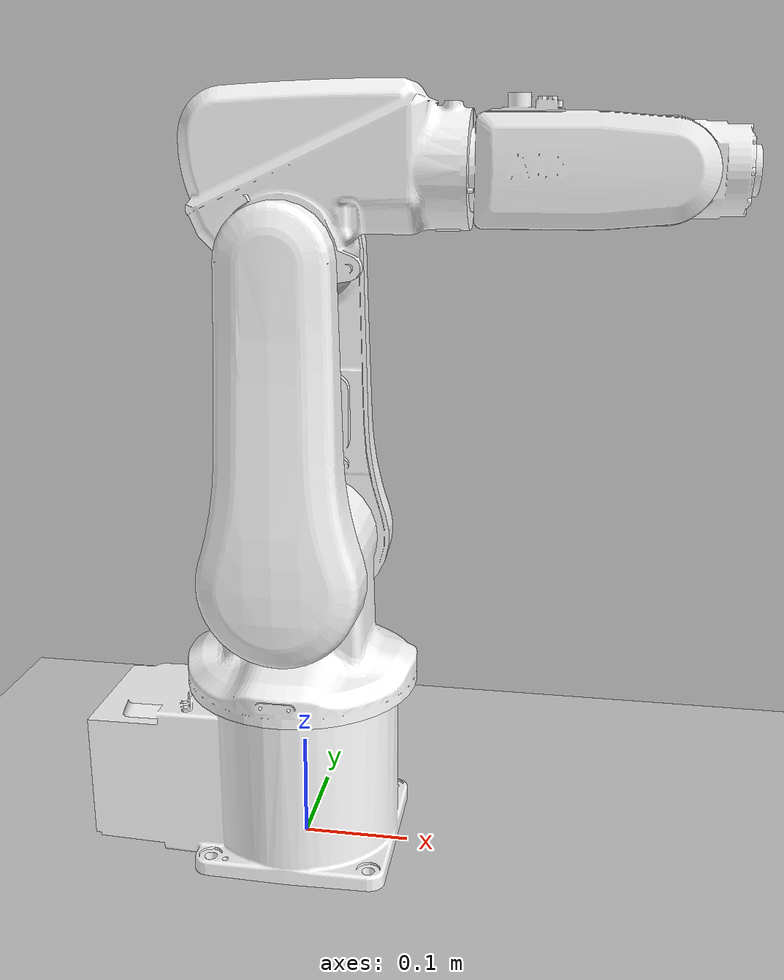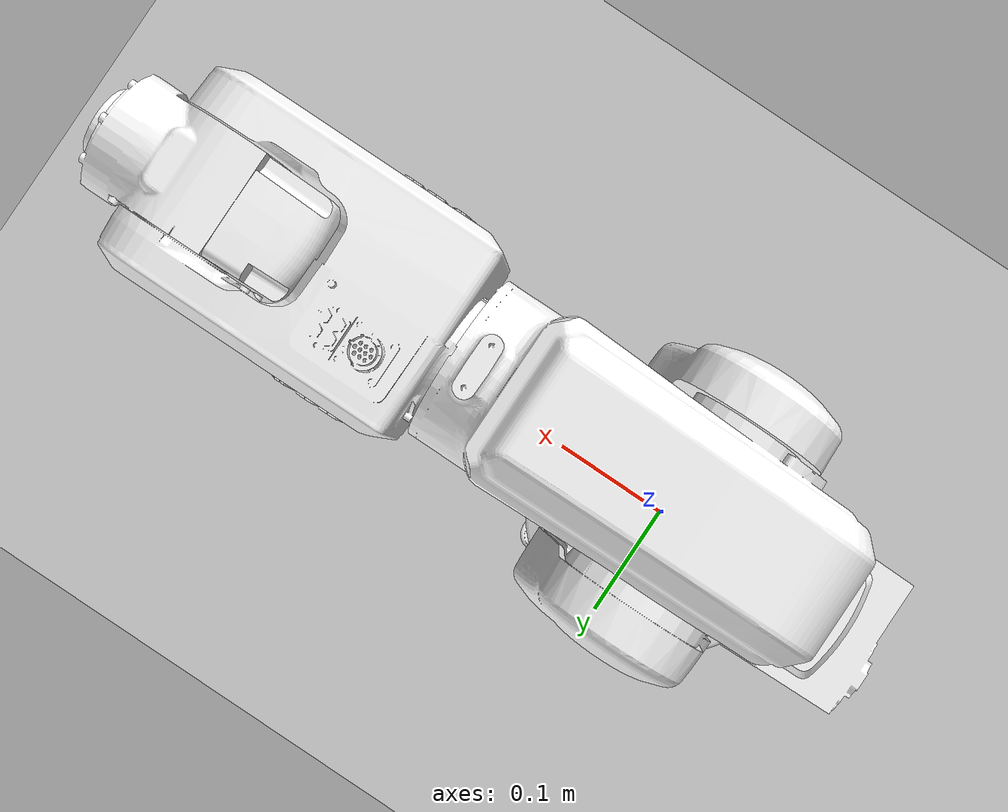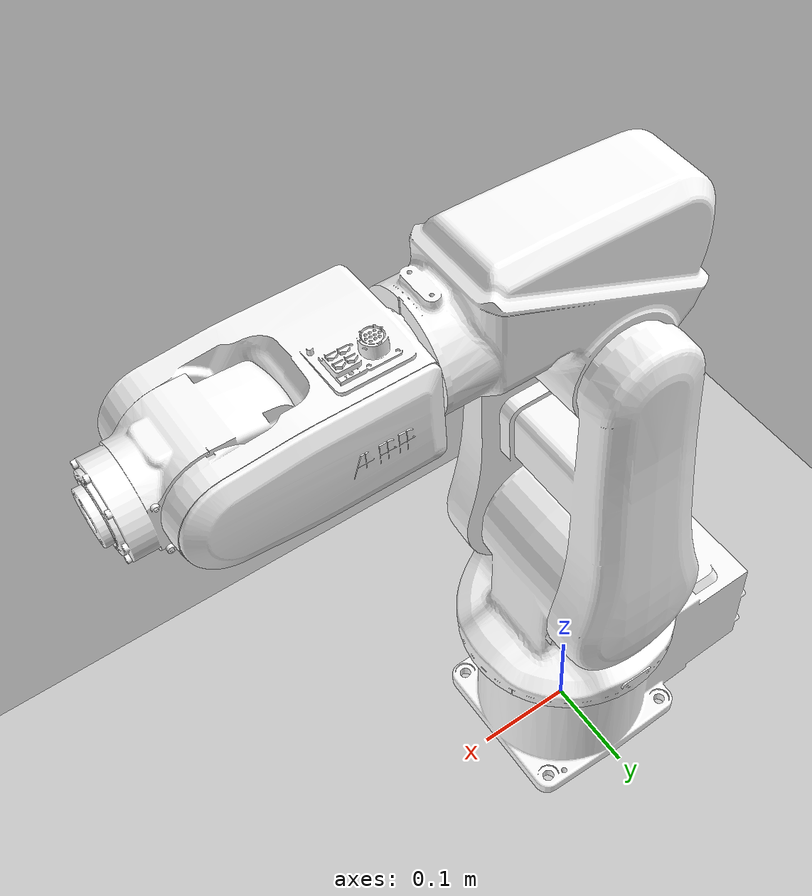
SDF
<?xml version="1.0" ?>
<sdf version="1.6">
  <world name="abb_irb120">
     <physics name="default_physics" default="0" type="ode">
      <max_step_size>0.001</max_step_size>
      <real_time_update_rate>1000</real_time_update_rate>
      <ode>
        <solver>
          <type>quick</type>
          <iters>100</iters>
          <sor>1.0</sor>
          <use_dynamic_moi_rescaling>false</use_dynamic_moi_rescaling>
        </solver>
      </ode>

    </physics>

    <include>
      <uri>model://ground_plane</uri>
    </include>

    <include>
      <uri>model://sun</uri>
    </include>

    <include>
      <uri>model://ABB_IRB120</uri>
  	<pose frame=''>0 0 0 0 0 0</pose>
       <plugin name="plugin" filename="libabb_irb120.so"/>
    </include>

  </world>
</sdf>

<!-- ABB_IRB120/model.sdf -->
<sdf version='1.6'>
  <model name='ABB_IRB120'>

    <joint name="fixed to ground" type="fixed">
      <parent>world</parent>
      <child>BASE</child>
    </joint>

    <link name='BASE'>
      <pose frame=''>0 0 0 0 -0 0</pose>
      <inertial>
        <pose frame=''>-0.042 0 0.08 0 -0 0</pose>
        <mass>6.215</mass>
        <inertia>
          <ixx>0.025</ixx>
          <ixy>0</ixy>
          <ixz>0.001</ixz>
          <iyy>0.049</iyy>
          <iyz>0</iyz>
          <izz>0.047</izz>
        </inertia>
      </inertial>
      <collision name='BASE_collision'>
        <pose frame=''>0 0 0 0 -0 0</pose>
        <geometry>
          <mesh>
            <scale>1 1 1</scale>
            <uri>model://ABB_IRB120/meshes/BASE.STL</uri>
          </mesh>
        </geometry>
      </collision>
      <visual name='BASE_visual'>
        <pose frame=''>0 0 0 0 -0 0</pose>
        <geometry>
          <mesh>
            <scale>1 1 1</scale>
            <uri>model://ABB_IRB120/meshes/BASE.STL</uri>
          </mesh>
        </geometry>
        <material>
       <ambient>255 128 0 1</ambient>
       <diffuse>1 1 1 1</diffuse>
       <emissive>0 0 0 1</emissive>
       <specular>0 0 0 1</specular>
       </material>
      </visual>
    </link>
    <link name='LINK1'>
      <pose frame=''>0 0 0.168 0 -0 0</pose>
      <inertial>
        <pose frame=''>0 0 0.07 0 -0 0</pose>
        <mass>3.067</mass>
        <inertia>
          <ixx>0.014</ixx>
          <ixy>0</ixy>
          <ixz>0</ixz>
          <iyy>0.014</iyy>
          <iyz>0</iyz>
          <izz>0.01</izz>
        </inertia>
      </inertial>
      <collision name='LINK1_collision'>
        <pose frame=''>0 0 0 0 -0 0</pose>
        <geometry>
          <mesh>
            <scale>1 1 1</scale>
            <uri>model://ABB_IRB120/meshes/LINK1.STL</uri>
          </mesh>
        </geometry>
      </collision>
      <visual name='LINK1_visual'>
        <pose frame=''>0 0 0 0 -0 0</pose>
        <geometry>
          <mesh>
            <scale>1 1 1</scale>
            <uri>model://ABB_IRB120/meshes/LINK1.STL</uri>
          </mesh>
        </geometry>
        <material>
       <ambient>255 128 0 1</ambient>
       <diffuse>1 1 1 1</diffuse>
       <emissive>0 0 0 1</emissive>
       <specular>0 0 0 1</specular>
       </material>
      </visual>
    </link>
    <joint name='LINK1_JOINT' type='revolute'>
      <child>LINK1</child>
      <parent>BASE</parent>
      <axis>
        <xyz>0 0 1</xyz>
        <limit>
          <lower>-3.141592</lower>
          <upper>3.141592</upper>
        </limit>
        <dynamics>
          <spring_reference>0</spring_reference>
          <spring_stiffness>0</spring_stiffness>
        </dynamics>
        <use_parent_model_frame>1</use_parent_model_frame>
      </axis>
    </joint>
    <link name='LINK2'>
      <pose frame=''>0 0 0.29 0 -0 0</pose>
      <inertial>
        <pose frame=''>-0.001 0.002 0.101 0 -0 0</pose>
        <mass>3.909</mass>
        <inertia>
          <ixx>0.06</ixx>
          <ixy>0</ixy>
          <ixz>0</ixz>
          <iyy>0.042</iyy>
          <iyz>0.001</iyz>
          <izz>0.026</izz>
        </inertia>
      </inertial>
      <collision name='LINK2_collision'>
        <pose frame=''>0 0 0 0 -0 0</pose>
        <geometry>
          <mesh>
            <scale>1 1 1</scale>
            <uri>model://ABB_IRB120/meshes/LINK2.STL</uri>
          </mesh>
        </geometry>
      </collision>
      <visual name='LINK2_visual'>
        <pose frame=''>0 0 0 0 -0 0</pose>
        <geometry>
          <mesh>
            <scale>1 1 1</scale>
            <uri>model://ABB_IRB120/meshes/LINK2.STL</uri>
          </mesh>
        </geometry>
        <material>
       <ambient>255 128 0 1</ambient>
       <diffuse>1 1 1 1</diffuse>
       <emissive>0 0 0 1</emissive>
       <specular>0 0 0 1</specular>
       </material>
      </visual>
    </link>
    <joint name='LINK2_JOINT' type='revolute'>
      <child>LINK2</child>
      <parent>LINK1</parent>
      <axis>
        <xyz>0 1 0</xyz>
        <limit>
          <lower>-3.141592</lower>
          <upper>3.141592</upper>
        </limit>
        <dynamics>
          <spring_reference>0</spring_reference>
          <spring_stiffness>0</spring_stiffness>
        </dynamics>
        <use_parent_model_frame>1</use_parent_model_frame>
      </axis>
    </joint>
    <link name='LINK3'>
      <pose frame=''>0 0 0.56 0 -0 0</pose>
      <inertial>
        <pose frame=''>0.023 -0.001 0.058 0 -0 0</pose>
        <mass>2.92</mass>
        <inertia>
          <ixx>0.008</ixx>
          <ixy>0</ixy>
          <ixz>0.001</ixz>
          <iyy>0.017</iyy>
          <iyz>0</iyz>
          <izz>0.013</izz>
        </inertia>
      </inertial>
      <collision name='LINK3_collision'>
        <pose frame=''>0 0 0 0 -0 0</pose>
        <geometry>
          <mesh>
            <scale>1 1 1</scale>
            <uri>model://ABB_IRB120/meshes/LINK3.STL</uri>
          </mesh>
        </geometry>
      </collision>
      <visual name='LINK3_visual'>
        <pose frame=''>0 0 0 0 -0 0</pose>
        <geometry>
          <mesh>
            <scale>1 1 1</scale>
            <uri>model://ABB_IRB120/meshes/LINK3.STL</uri>
          </mesh>
        </geometry>
        <material>
       <ambient>255 128 0 1</ambient>
       <diffuse>1 1 1 1</diffuse>
       <emissive>0 0 0 1</emissive>
       <specular>0 0 0 1</specular>
       </material>
      </visual>
    </link>
    <joint name='LINK3_JOINT' type='revolute'>
      <child>LINK3</child>
      <parent>LINK2</parent>
      <axis>
        <xyz>0 1 0</xyz>
          <limit>
          <lower>-3.141592</lower>
          <upper>3.141592</upper>
        </limit>
        <dynamics>
          <spring_reference>0</spring_reference>
          <spring_stiffness>0</spring_stiffness>
        </dynamics>
        <use_parent_model_frame>1</use_parent_model_frame>
      </axis>
    </joint>
    <link name='LINK4'>
      <pose frame=''>0.15 0 0.63 0 -0 0</pose>
      <inertial>
        <pose frame=''>0.076 -0.005 0 0 -0 0</pose>
        <mass>1.448</mass>
        <inertia>
          <ixx>0.003</ixx>
          <ixy>0</ixy>
          <ixz>0</ixz>
          <iyy>0.004</iyy>
          <iyz>0</iyz>
          <izz>0.006</izz>
        </inertia>
      </inertial>
      <collision name='LINK4_collision'>
        <pose frame=''>0 0 0 0 -0 0</pose>
        <geometry>
          <mesh>
            <scale>1 1 1</scale>
            <uri>model://ABB_IRB120/meshes/LINK4.STL</uri>
          </mesh>
        </geometry>
      </collision>
      <visual name='LINK4_visual'>
        <pose frame=''>0 0 0 0 -0 0</pose>
        <geometry>
          <mesh>
            <scale>1 1 1</scale>
            <uri>model://ABB_IRB120/meshes/LINK4.STL</uri>
          </mesh>
        </geometry>
        <material>
       <ambient>255 128 0 1</ambient>
       <diffuse>1 1 1 1</diffuse>
       <emissive>0 0 0 1</emissive>
       <specular>0 0 0 1</specular>
       </material>
      </visual>
    </link>
    <joint name='LINK4_JOINT' type='revolute'>
      <child>LINK4</child>
      <parent>LINK3</parent>
      <axis>
        <xyz>1 0 0</xyz>
          <limit>
          <lower>-3.141592</lower>
          <upper>3.141592</upper>
        </limit>
        <dynamics>
          <spring_reference>0</spring_reference>
          <spring_stiffness>0</spring_stiffness>
        </dynamics>
        <use_parent_model_frame>1</use_parent_model_frame>
      </axis>
    </joint>
    <link name='LINK5'>
      <pose frame=''>0.302 0 0.63 0 -0 0</pose>
      <inertial>
        <pose frame=''>-0.001 0 0 0 -0 0</pose>
        <mass>0.547</mass>
        <inertia>
          <ixx>0</ixx>
          <ixy>0</ixy>
          <ixz>0</ixz>
          <iyy>0.001</iyy>
          <iyz>0</iyz>
          <izz>0.001</izz>
        </inertia>
      </inertial>
      <collision name='LINK5_collision'>
        <pose frame=''>0 0 0 0 -0 0</pose>
        <geometry>
          <mesh>
            <scale>1 1 1</scale>
            <uri>model://ABB_IRB120/meshes/LINK5.STL</uri>
          </mesh>
        </geometry>
      </collision>
      <visual name='LINK5_visual'>
        <pose frame=''>0 0 0 0 -0 0</pose>
        <geometry>
          <mesh>
            <scale>1 1 1</scale>
            <uri>model://ABB_IRB120/meshes/LINK5.STL</uri>
          </mesh>
        </geometry>
          <material>
         <ambient>255 128 0 1</ambient>
         <diffuse>1 1 1 1</diffuse>
         <emissive>0 0 0 1</emissive>
         <specular>0 0 0 1</specular>
         </material>
      </visual>
    </link>
    <joint name='LINK5_JOINT' type='revolute'>
      <child>LINK5</child>
      <parent>LINK4</parent>
      <axis>
        <xyz>0 1 0</xyz>
          <limit>
          <lower>-3.141592</lower>
          <upper>3.141592</upper>
        </limit>
        <dynamics>
          <spring_reference>0</spring_reference>
          <spring_stiffness>0</spring_stiffness>
        </dynamics>
        <use_parent_model_frame>1</use_parent_model_frame>
      </axis>
    </joint>
    <link name='LINK6'>
      <pose frame=''>0.374 0 0.63 0 -0 0</pose>
      <inertial>
        <pose frame=''>-0.007 0 0 0 -0 0</pose>
        <mass>0.014</mass>
        <inertia>
          <ixx>0</ixx>
          <ixy>0</ixy>
          <ixz>0</ixz>
          <iyy>0</iyy>
          <iyz>0</iyz>
          <izz>0</izz>
        </inertia>
      </inertial>
      <collision name='LINK6_collision'>
        <pose frame=''>0 0 0 0 -0 0</pose>
        <geometry>
          <mesh>
            <scale>1 1 1</scale>
            <uri>model://ABB_IRB120/meshes/LINK6.STL</uri>
          </mesh>
        </geometry>
      </collision>
      <visual name='LINK6_visual'>
        <pose frame=''>0 0 0 0 -0 0</pose>
        <geometry>
          <mesh>
            <scale>1 1 1</scale>
            <uri>model://ABB_IRB120/meshes/LINK6.STL</uri>
          </mesh>
        </geometry>
        <material>
       <ambient>0 0 0 1</ambient>
       <diffuse>1 1 1 1</diffuse>
       <emissive>0 0 0 1</emissive>
       <specular>0 0 0 1</specular>
       </material>
      </visual>
    </link>
    <joint name='LINK6_JOINT' type='revolute'>
      <child>LINK6</child>
      <parent>LINK5</parent>
      <axis>
        <xyz>1 0 0</xyz>
        <limit>
          <lower>-3.141592</lower>
          <upper>3.141592</upper>
        </limit>
        <dynamics>
          <spring_reference>0</spring_reference>
          <spring_stiffness>0</spring_stiffness>
        </dynamics>
        <use_parent_model_frame>1</use_parent_model_frame>
      </axis>
    </joint>
  </model>
</sdf>
